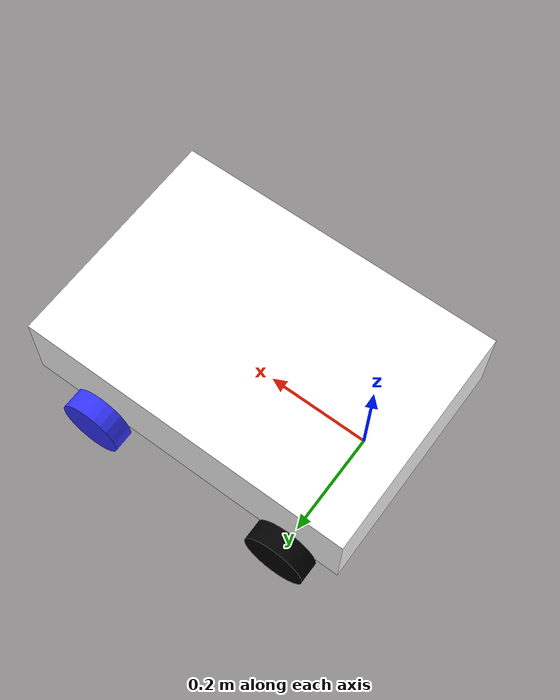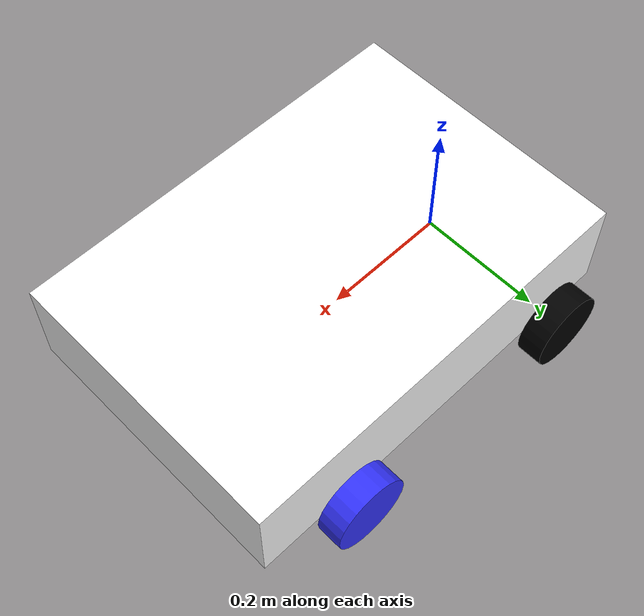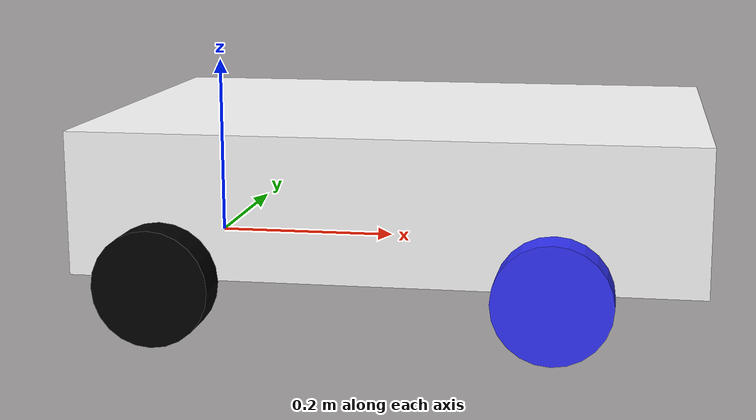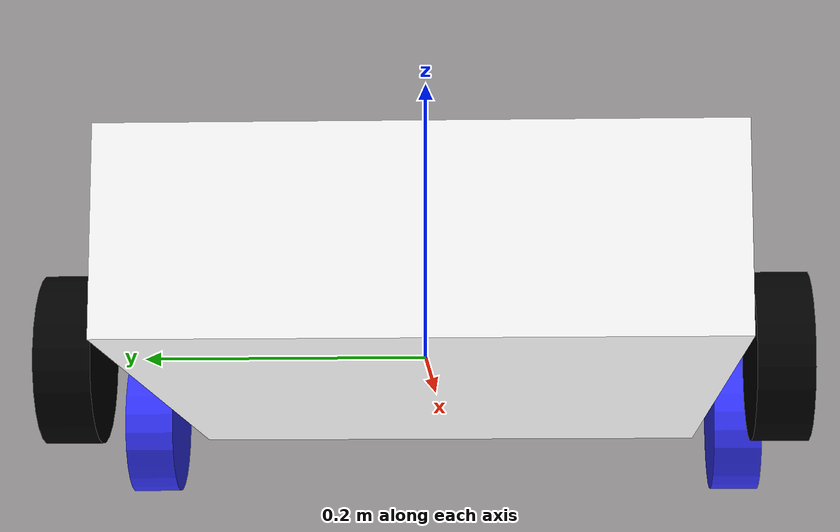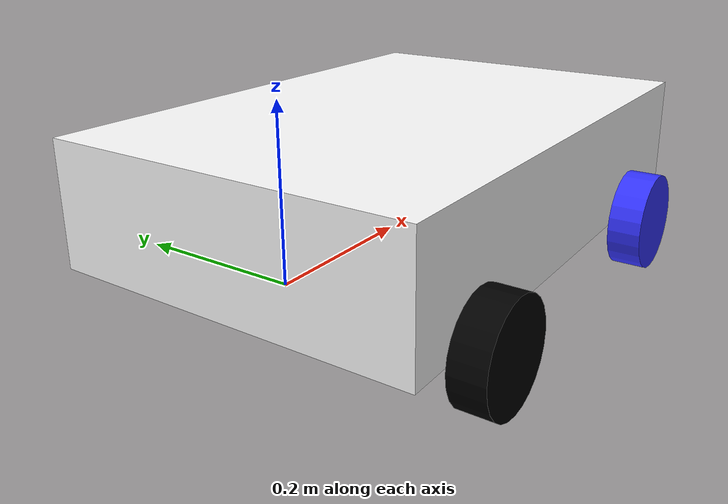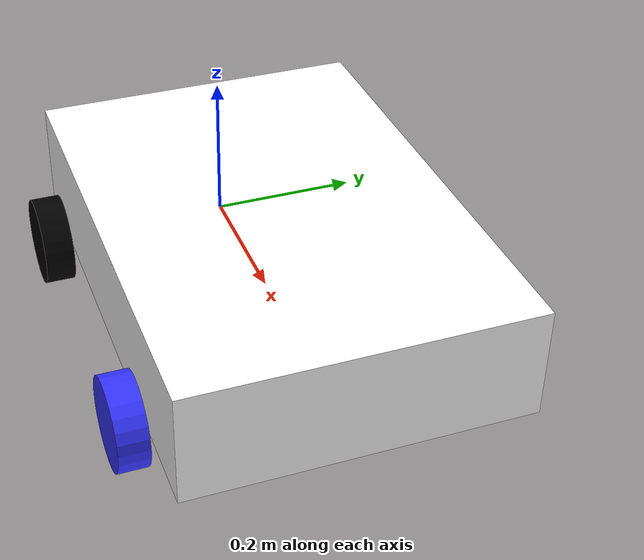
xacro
<?xml version="1.0"?>
<robot xmlns:xacro="http://www.ros.org/wiki/xacro"  name="robot">

    <xacro:include filename="inertial_macros.xacro"/>

    <material name="white">
        <color rgba ="1 1 1 1" />
    </material>

    <material name="orange">
        <color rgba ="1 0.3 0.1 1" />
    </material>

    <material name="blue">
        <color rgba ="0.2 0.2 1 1" />
    </material>

    <material name="black">
        <color rgba ="0 0 0 1" />
    </material>

    <!-- BASE LINK -->

    <link name="base_link">

    </link>

    <!-- CHASSIS LINK-->

    <joint name="chassis_joint" type="fixed">
        <parent link="base_link"/>
        <child link="chassis"/>
        <origin xyz="-0.1 0 0"/>
    </joint>

    <link name="chassis">
        <visual>
            <origin xyz="0.325 0 0.075"/>
            <geometry>
                <box size="0.65 0.45 0.15"/>
            </geometry>
            <material name="white"/>
        </visual>
        <collision>
            <origin xyz="0.325 0 0.075"/>
            <geometry>
                <box size="0.65 0.45 0.15"/>
            </geometry>
            <material name="white"/>
        </collision>
        <xacro:inertial_box mass="0.5" x="0.3" y="0.3" z="0.15">
            <origin xyz="0.325 0 0.075" rpy="0 0 0"/>
        </xacro:inertial_box>
    </link>

    <gazebo reference="chassis">
        <material>Gazebo/White</material>
    </gazebo>

    <!-- LEFT WHEEL LINK-->

    <joint name="left_wheel_joint" type="continuous">
        <parent link="base_link"/>
        <child link="left_wheel"/>
        <origin xyz="0 0.25 0" rpy="-${pi/2} 0 0"/>
        <axis xyz="0 0 1"/>
    </joint>

    <link name="left_wheel">
        <visual>
            <geometry>
                <cylinder radius="0.06" length="0.04"/>
            </geometry>
            <material name="black"/>
        </visual>
        <collision>
            <geometry>
                <cylinder radius="0.06" length="0.04"/>
            </geometry>
            <material name="black"/>
        </collision>
        <xacro:inertial_cylinder mass="0.1" length="0.04" radius="0.06">
            <origin xyz="0 0 0" rpy="0 0 0"/>
        </xacro:inertial_cylinder>
    </link>

    <gazebo reference="left_wheel">
        <material>Gazebo/Black</material>
    </gazebo>

    <!-- RIGHT WHEEL LINK-->

    <joint name="right_wheel_joint" type="continuous">
        <parent link="base_link"/>
        <child link="right_wheel"/>
        <origin xyz="0 -0.25 0" rpy="${pi/2} 0 0"/>
        <axis xyz="0 0 -1"/>
    </joint>

    <link name="right_wheel">
        <visual>
            <geometry>
                <cylinder radius="0.06" length="0.04"/>
            </geometry>
            <material name="black"/>
        </visual>
        <collision>
            <geometry>
                <cylinder radius="0.06" length="0.04"/>
            </geometry>
            <material name="black"/>
        </collision>
        <xacro:inertial_cylinder mass="0.1" length="0.04" radius="0.06">
            <origin xyz="0 0 0" rpy="0 0 0"/>
        </xacro:inertial_cylinder>
    </link>

    <gazebo reference="right_wheel">
        <material>Gazebo/Black</material>
    </gazebo>

    <!-- FRONT LEFT WHEEL LINK-->

    <joint name="front_left_wheel_joint" type="fixed">
        <parent link="base_link"/>
        <child link="front_left_wheel"/>
        <origin xyz="0.4 0.25 0" rpy="-${pi/2} 0 0"/>
        <axis xyz="0 0 1"/>
    </joint>

    <link name="front_left_wheel">
        <visual>
            <geometry>
                <cylinder radius="0.06" length="0.04"/>
            </geometry>
            <material name="blue"/>
        </visual>
        <collision>
            <geometry>
                <cylinder radius="0.06" length="0.04"/>
            </geometry>
            <material name="blue"/>
        </collision>
        <xacro:inertial_cylinder mass="0.1" length="0.04" radius="0.06">
            <origin xyz="0 0 0" rpy="0 0 0"/>
        </xacro:inertial_cylinder>
    </link>

    <gazebo reference="front_left_wheel">
        <material>Gazebo/Blue</material>
        <mu1 value="0.001"/>
        <mu2 value="0.001"/>
    </gazebo>

    <!-- FRONT RIGHT WHEEL LINK-->

    <joint name="front_right_wheel_joint" type="fixed">
        <parent link="base_link"/>
        <child link="front_right_wheel"/>
        <origin xyz="0.4 -0.25 0" rpy="${pi/2} 0 0"/>
        <axis xyz="0 0 -1"/>
    </joint>

    <link name="front_right_wheel">
        <visual>
            <geometry>
                <cylinder radius="0.06" length="0.04"/>
            </geometry>
            <material name="blue"/>
        </visual>
        <collision>
            <geometry>
                <cylinder radius="0.06" length="0.04"/>
            </geometry>
            <material name="blue"/>
        </collision>
        <xacro:inertial_cylinder mass="0.1" length="0.04" radius="0.06">
            <origin xyz="0 0 0" rpy="0 0 0"/>
        </xacro:inertial_cylinder>
    </link>

    <gazebo reference="front_right_wheel">
        <material>Gazebo/Blue</material>
        <mu1 value="0.001"/>
        <mu2 value="0.001"/>
    </gazebo>

</robot>
